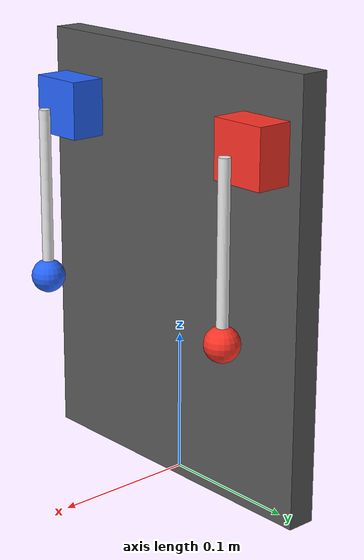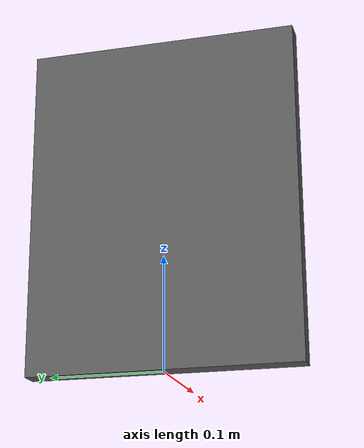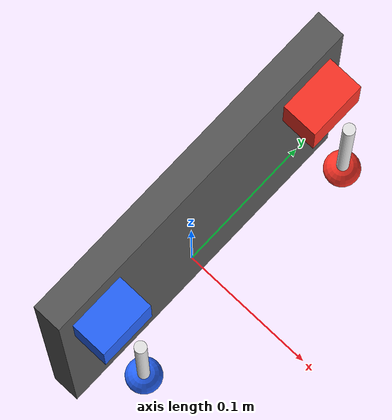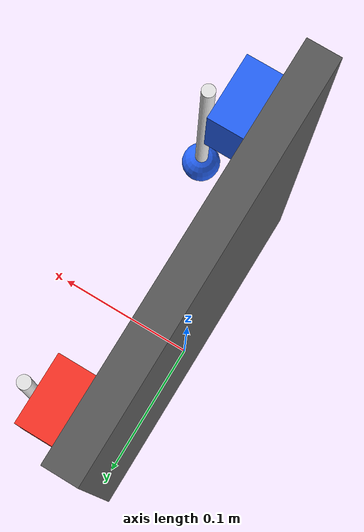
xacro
<?xml version="1.0" ?>
<robot xmlns:xacro="http://www.ros.org/wiki/xacro" name="$(arg robot_name)">
  <xacro:arg name="robot_name" default="ServoDemo"/>
  <xacro:arg name="use_sim" default="false"/>

  <xacro:if value="$(arg use_sim)">
    <xacro:include filename="$(find servo_demo_description)/simulation/servo_demo.simulation.xacro"/>
    <xacro:servo_demo_simulation name="$(arg robot_name)"/>
  </xacro:if>

  <material name="stand_gray">
    <color rgba="0.35 0.35 0.35 1.0"/>
  </material>
  <material name="servo_blue">
    <color rgba="0.15 0.4 1.0 1.0"/>
  </material>
  <material name="servo_red">
    <color rgba="1.0 0.2 0.15 1.0"/>
  </material>
  <material name="arm_white">
    <color rgba="0.92 0.92 0.92 1.0"/>
  </material>

  <!-- Root link named "world" is fixed (immovable) by the simulator -->
  <link name="world">
    <inertial>
      <origin xyz="0 0 0" rpy="0 0 0"/>
      <mass value="0.001"/>
      <inertia ixx="0.00001" ixy="0.0" ixz="0.0" iyy="0.00001" iyz="0.0" izz="0.00001"/>
    </inertial>
  </link>

  <joint name="stand_joint" type="fixed">
    <parent link="world"/>
    <child link="stand_link"/>
    <origin xyz="0 0 0.15" rpy="0 0 0"/>
  </joint>
  <link name="stand_link">
    <inertial>
      <origin xyz="0 0 0" rpy="0 0 0"/>
      <mass value="2.0"/>
      <inertia ixx="0.02" ixy="0.0" ixz="0.0" iyy="0.02" iyz="0.0" izz="0.02"/>
    </inertial>
    <visual>
      <origin xyz="0 0 0" rpy="0 0 0"/>
      <geometry>
        <box size="0.02 0.24 0.30"/>
      </geometry>
      <material name="stand_gray"/>
    </visual>
    <collision>
      <origin xyz="0 0 0" rpy="0 0 0"/>
      <geometry>
        <box size="0.02 0.24 0.30"/>
      </geometry>
    </collision>
  </link>

  <xacro:macro name="servo_unit" params="id color y">
    <joint name="${id}_mount_joint" type="fixed">
      <parent link="stand_link"/>
      <child link="${id}_servo_link"/>
      <origin xyz="0.02 ${y} 0.10" rpy="0 0 0"/>
    </joint>
    <link name="${id}_servo_link">
      <inertial>
        <origin xyz="0 0 0" rpy="0 0 0"/>
        <mass value="0.02"/>
        <inertia ixx="0.00001" ixy="0.0" ixz="0.0" iyy="0.00001" iyz="0.0" izz="0.00001"/>
      </inertial>
      <visual>
        <origin xyz="0 0 0" rpy="0 0 0"/>
        <geometry>
          <box size="0.03 0.04 0.04"/>
        </geometry>
        <material name="${color}"/>
      </visual>
      <collision>
        <origin xyz="0 0 0" rpy="0 0 0"/>
        <geometry>
          <box size="0.03 0.04 0.04"/>
        </geometry>
      </collision>
    </link>

    <joint name="${id}_joint" type="revolute">
      <parent link="${id}_servo_link"/>
      <child link="${id}_arm_link"/>
      <origin xyz="0.025 0 0" rpy="0 0 0"/>
      <axis xyz="1 0 0"/>
      <limit lower="-1.7" upper="1.7" effort="${0.18 * 180 / pi}" velocity="8.0"/>
      <drive stiffness="${3.0 * 180 / pi}" damping="${0.08 * 180 / pi}"/>
    </joint>
    <link name="${id}_arm_link">
      <inertial>
        <origin xyz="0 0 -0.113" rpy="0 0 0"/>
        <mass value="0.045"/>
        <inertia ixx="0.000024" ixy="0.0" ixz="0.0" iyy="0.000024" iyz="0.0" izz="0.000003"/>
      </inertial>
      <visual>
        <origin xyz="0 0 -0.06" rpy="0 0 0"/>
        <geometry>
          <cylinder radius="0.004" length="0.12"/>
        </geometry>
        <material name="arm_white"/>
      </visual>
      <visual>
        <origin xyz="0 0 -0.12" rpy="0 0 0"/>
        <geometry>
          <sphere radius="0.012"/>
        </geometry>
        <material name="${color}"/>
      </visual>
      <collision>
        <origin xyz="0 0 -0.12" rpy="0 0 0"/>
        <geometry>
          <sphere radius="0.012"/>
        </geometry>
      </collision>
    </link>
  </xacro:macro>

  <!-- Blue: ideal servo (plain xDrive), Red: cheap SG90-like servo.
       y separation 0.18 keeps the swinging arms (swing plane is y-z)
       clear of each other at full deflection. -->
  <xacro:servo_unit id="ideal" color="servo_blue" y="-0.09"/>
  <xacro:servo_unit id="cheap" color="servo_red" y="0.09"/>

</robot>
